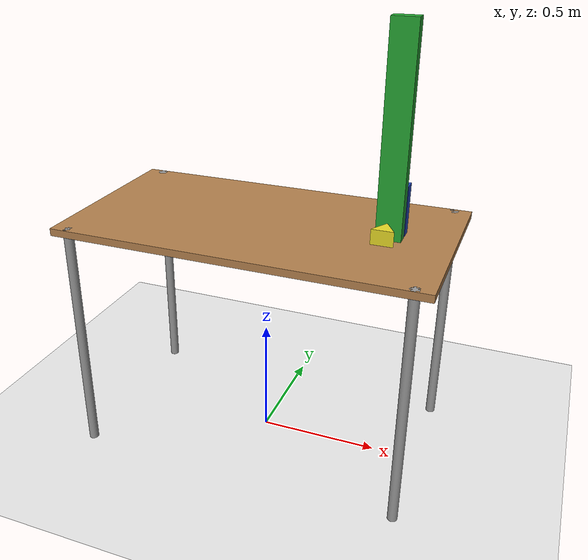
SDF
<sdf version='1.6'>
  <world name='default'>

    <light name='sun' type='directional'>
      <cast_shadows>1</cast_shadows>
      <pose frame=''>0 0 10 0 -0 0</pose>
      <diffuse>0.8 0.8 0.8 1</diffuse>
      <specular>0.2 0.2 0.2 1</specular>
      <attenuation>
        <range>1000</range>
        <constant>0.9</constant>
        <linear>0.01</linear>
        <quadratic>0.001</quadratic>
      </attenuation>
      <direction>-0.5 0.1 -0.9</direction>
    </light>

    <model name='ground_plane'>
      <static>1</static>
      <link name='link'>
        <collision name='collision'>
          <geometry>
            <plane>
              <normal>0 0 1</normal>
              <size>100 100</size>
            </plane>
          </geometry>
          <surface>
            <contact>
              <collide_bitmask>65535</collide_bitmask>
              <ode/>
            </contact>
            <friction>
              <ode>
                <mu>100</mu>
                <mu2>50</mu2>
              </ode>
              <torsional>
                <ode/>
              </torsional>
            </friction>
            <bounce/>
          </surface>
          <max_contacts>10</max_contacts>
        </collision>
        <visual name='visual'>
          <cast_shadows>0</cast_shadows>
          <geometry>
            <plane>
              <normal>0 0 1</normal>
              <size>100 100</size>
            </plane>
          </geometry>
          <material>
            <script>
              <uri>file://media/materials/scripts/gazebo.material</uri>
              <name>Gazebo/WhiteGlow</name>
            </script>
          </material>
        </visual>
        <self_collide>0</self_collide>
        <enable_wind>0</enable_wind>
        <kinematic>0</kinematic>
      </link>
    </model>

    <gravity>0 0 -9.8</gravity>
    <magnetic_field>6e-06 2.3e-05 -4.2e-05</magnetic_field>
    <atmosphere type='adiabatic'/>
    <physics name='default_physics' default='0' type='ode'>
      <max_step_size>0.001</max_step_size>
      <real_time_factor>2</real_time_factor>
      <real_time_update_rate>2000</real_time_update_rate>
    </physics>
    <scene>
      <ambient>0.4 0.4 0.4 1</ambient>
      <background>0.7 0.7 0.7 1</background>
      <shadows>1</shadows>
    </scene>
    <audio>
      <device>default</device>
    </audio>
    <wind/>
    <spherical_coordinates>
      <surface_model>EARTH_WGS84</surface_model>
      <latitude_deg>0</latitude_deg>
      <longitude_deg>0</longitude_deg>
      <elevation>0</elevation>
      <heading_deg>0</heading_deg>
    </spherical_coordinates>
    <gui fullscreen='0'>
      <camera name='user_camera'>
        <pose frame=''>5.27134 -4.00834 4.67211 0 0.564737 2.53272</pose>
        <view_controller>orbit</view_controller>
        <projection_type>perspective</projection_type>
      </camera>
    </gui>

  <include>
    <uri>model://table</uri>
  </include>

  <!-- cube -->
  <model name='cube'>
      <static> false </static>
      <pose frame=''>0.5 0.0 1.4 0 0 0</pose>
      <link name='link'>
        <inertial>
          <mass>1</mass>
          <inertia>
            <ixx>0.1</ixx>
            <ixy>0</ixy>
            <ixz>0</ixz>
            <iyy>0.1</iyy>
            <iyz>0</iyz>
            <izz>0.1</izz>
          </inertia>
        </inertial>
        <visual name='visual'>
          <geometry>
            <box>
              <size>0.1 0.05 0.8</size>
            </box>
          </geometry>
          <material>
            <script>
              <name>Gazebo/Green</name>
              <uri>file://media/materials/scripts/gazebo.material</uri>
            </script>
          </material>
        </visual>

        <collision name='collision'>
          <geometry>
            <box>
              <size>0.1 0.05 0.8</size>
            </box>
          </geometry>
        </collision>

        <self_collide>0</self_collide>
        <enable_wind>0</enable_wind>
        <kinematic>0</kinematic>
      </link>
    </model>

      <!-- cube2 -->
  <model name='cube2'>
      <static> false </static>
      <pose frame=''>0.5 0.06 1.1 0 0 0</pose>
      <link name='link'>
        <inertial>
          <mass>1</mass>
          <inertia>
            <ixx>0.1</ixx>
            <ixy>0</ixy>
            <ixz>0</ixz>
            <iyy>0.1</iyy>
            <iyz>0</iyz>
            <izz>0.1</izz>
          </inertia>
        </inertial>
        <visual name='visual'>
          <geometry>
            <box>
              <size>0.1 0.05 0.2</size>
            </box>
          </geometry>
          <material>
            <script>
              <name>Gazebo/blue</name>
              <uri>file://media/materials/scripts/gazebo.material</uri>
            </script>
          </material>
        </visual>
        <collision name='collision'>
          <geometry>
            <box>
              <size>0.1 0.05 0.2</size>
            </box>
          </geometry>
        </collision>
        <self_collide>0</self_collide>
        <enable_wind>0</enable_wind>
        <kinematic>0</kinematic>
      </link>
    </model>

    <model name='pushed_object'>
    <static> false </static>
      <pose frame=''>0.5 -0.1 1.05 0 0 0</pose>
      <link name='link'>
        <inertial>
          <mass>1</mass>
          <inertia>
            <ixx>0.1</ixx>
            <ixy>0</ixy>
            <ixz>0</ixz>
            <iyy>0.1</iyy>
            <iyz>0</iyz>
            <izz>0.1</izz>
          </inertia>
        </inertial>
        <visual name='visual'>
          <geometry>
            <mesh>
              <uri>model://objects/meshes/triangular_prism.dae</uri>
            </mesh>
          </geometry>
          <material>
            <script>
              <name>Gazebo/Yellow</name>
              <uri>file://media/materials/scripts/gazebo.material</uri>
            </script>
          </material>
        </visual>
        <collision name='collision'>
          <geometry>
            <mesh>
              <uri>model://objects/meshes/triangular_prism.dae</uri>
            </mesh>
          </geometry>
        </collision>
        <self_collide>0</self_collide>
        <enable_wind>0</enable_wind>
        <kinematic>0</kinematic>
      </link>
    </model>

  </world>
</sdf>

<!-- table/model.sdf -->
<sdf version="1.5">
  <model name="table">
    <static>true</static>
    <link name="link">
      <collision name="surface">
        <pose>0 0 0.985 0 0 0</pose>
        <geometry>
          <box>
            <size>1.5 0.8 0.03</size>
          </box>
        </geometry>
        <surface>
          <friction>
            <ode>
              <mu>0.6</mu>
              <mu2>0.6</mu2>
            </ode>
          </friction>
        </surface>
      </collision>
      <visual name="visual1">
        <pose>0 0 0.985 0 0 0</pose>
        <geometry>
          <box>
            <size>1.5 0.8 0.03</size>
          </box>
        </geometry>
        <material>
          <script>
            <uri>file://media/materials/scripts/gazebo.material</uri>
            <name>Gazebo/Wood</name>
          </script>
        </material>
      </visual>
      <collision name="front_left_leg">
        <pose>0.68 0.38 0.5 0 0 0</pose>
        <geometry>
          <cylinder>
            <radius>0.02</radius>
            <length>1.0</length>
          </cylinder>
        </geometry>
      </collision>
      <visual name="front_left_leg">
        <pose>0.68 0.38 0.5 0 0 0</pose>
        <geometry>
          <cylinder>
            <radius>0.02</radius>
            <length>1.0</length>
          </cylinder>
        </geometry>
        <material>
          <script>
            <uri>file://media/materials/scripts/gazebo.material</uri>
            <name>Gazebo/Grey</name>
          </script>
        </material>
      </visual>
      <collision name="front_right_leg">
        <pose>0.68 -0.38 0.5 0 0 0</pose>
        <geometry>
          <cylinder>
            <radius>0.02</radius>
            <length>1.0</length>
          </cylinder>
        </geometry>
      </collision>
      <visual name="front_right_leg">
        <pose>0.68 -0.38 0.5 0 0 0</pose>
        <geometry>
          <cylinder>
            <radius>0.02</radius>
            <length>1.0</length>
          </cylinder>
        </geometry>
        <material>
          <script>
            <uri>file://media/materials/scripts/gazebo.material</uri>
            <name>Gazebo/Grey</name>
          </script>
        </material>
      </visual>
      <collision name="back_right_leg">
        <pose>-0.68 -0.38 0.5 0 0 0</pose>
        <geometry>
          <cylinder>
            <radius>0.02</radius>
            <length>1.0</length>
          </cylinder>
        </geometry>
      </collision>
      <visual name="back_right_leg">
        <pose>-0.68 -0.38 0.5 0 0 0</pose>
        <geometry>
          <cylinder>
            <radius>0.02</radius>
            <length>1.0</length>
          </cylinder>
        </geometry>
        <material>
          <script>
            <uri>file://media/materials/scripts/gazebo.material</uri>
            <name>Gazebo/Grey</name>
          </script>
        </material>
      </visual>
      <collision name="back_left_leg">
        <pose>-0.68 0.38 0.5 0 0 0</pose>
        <geometry>
          <cylinder>
            <radius>0.02</radius>
            <length>1.0</length>
          </cylinder>
        </geometry>
      </collision>
      <visual name="back_left_leg">
        <pose>-0.68 0.38 0.5 0 0 0</pose>
        <geometry>
          <cylinder>
            <radius>0.02</radius>
            <length>1.0</length>
          </cylinder>
        </geometry>
        <material>
          <script>
            <uri>file://media/materials/scripts/gazebo.material</uri>
            <name>Gazebo/Grey</name>
          </script>
        </material>
      </visual>
    </link>
  </model>
</sdf>
